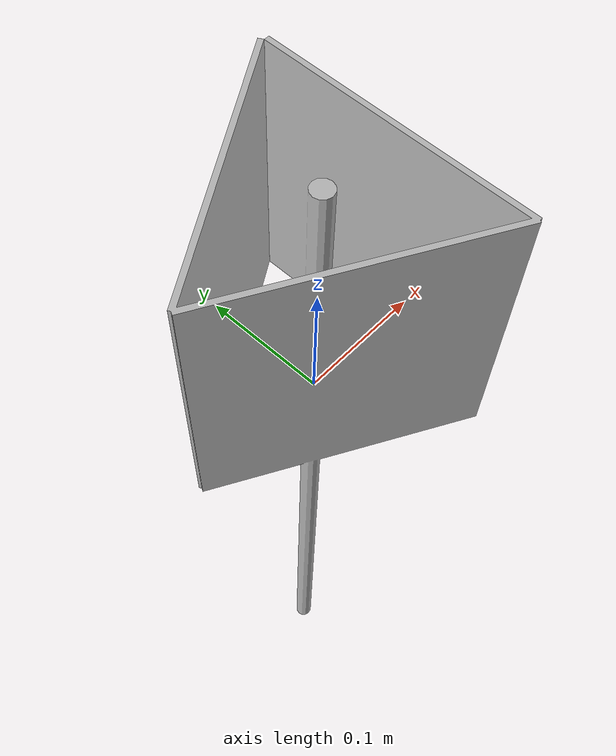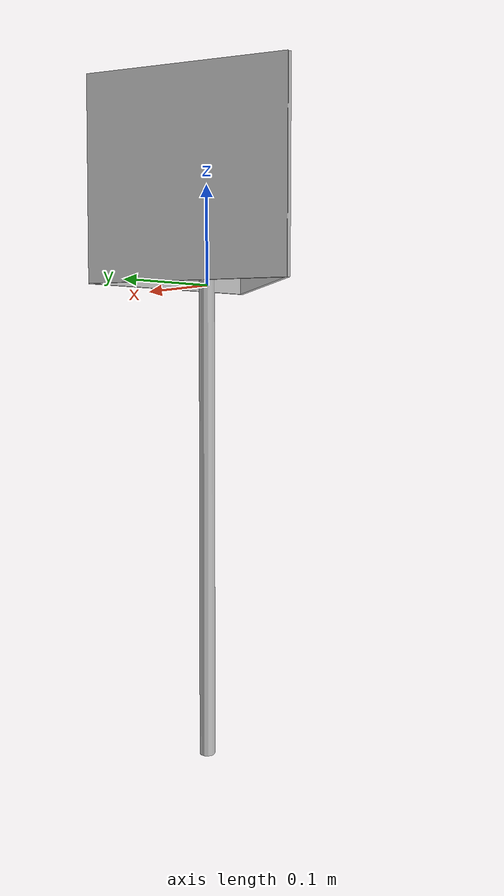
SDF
<?xml version="1.0" ?><sdf version="1.6">
  <model name="Marker0">
    <static>true</static>
    <link name="link">
      <visual name="visual">
        <geometry>
          <mesh>
            <uri>Marker0.dae</uri>
          <scale>0.4 0.4 0.4</scale></mesh>
        </geometry>
      </visual>
    </link>
  </model>
</sdf>
